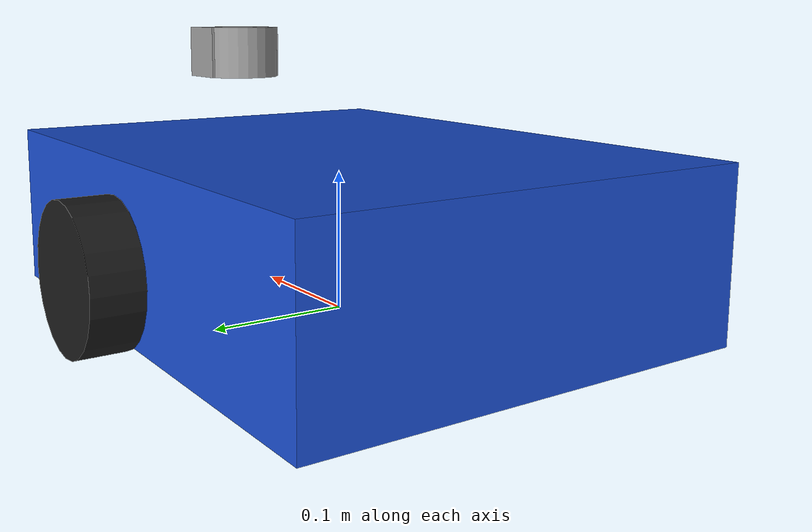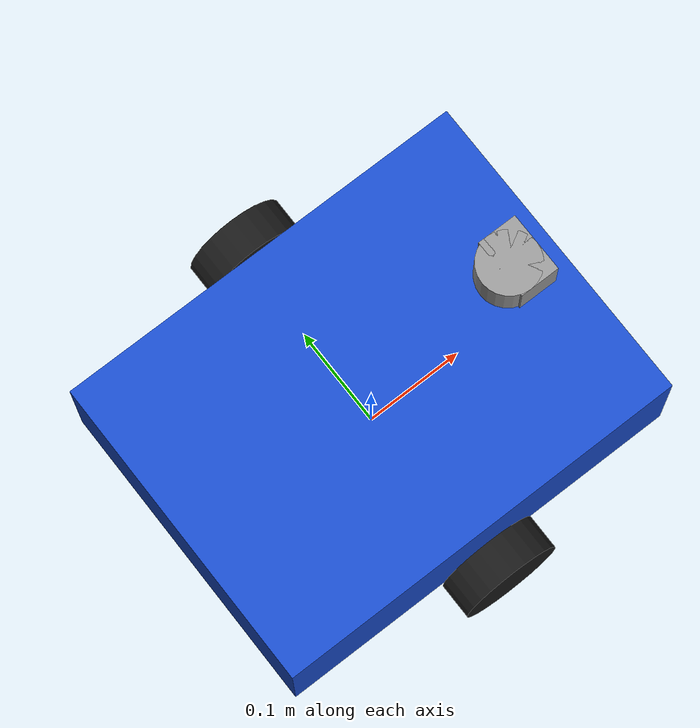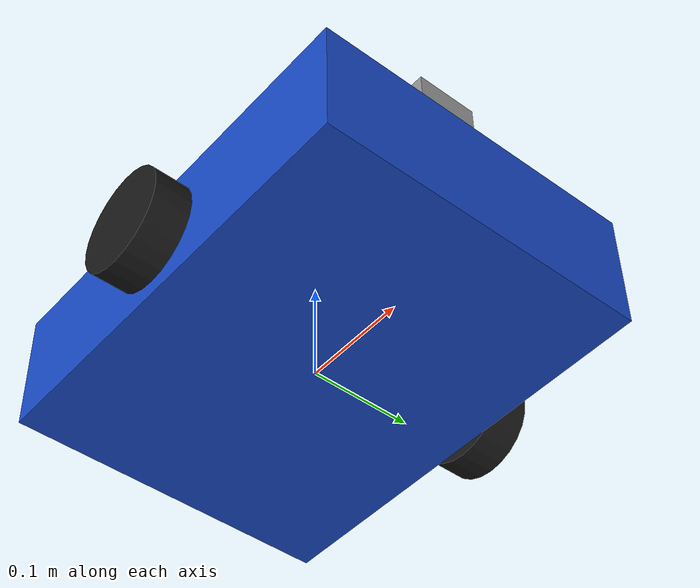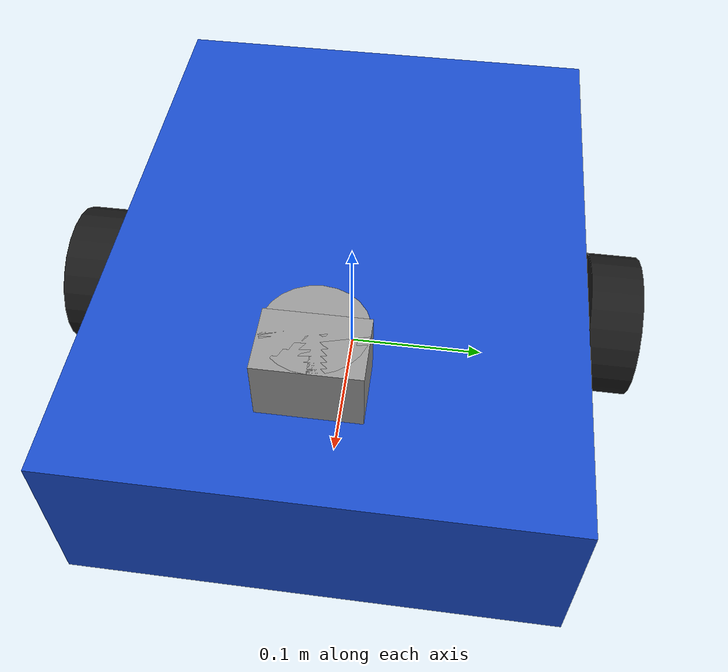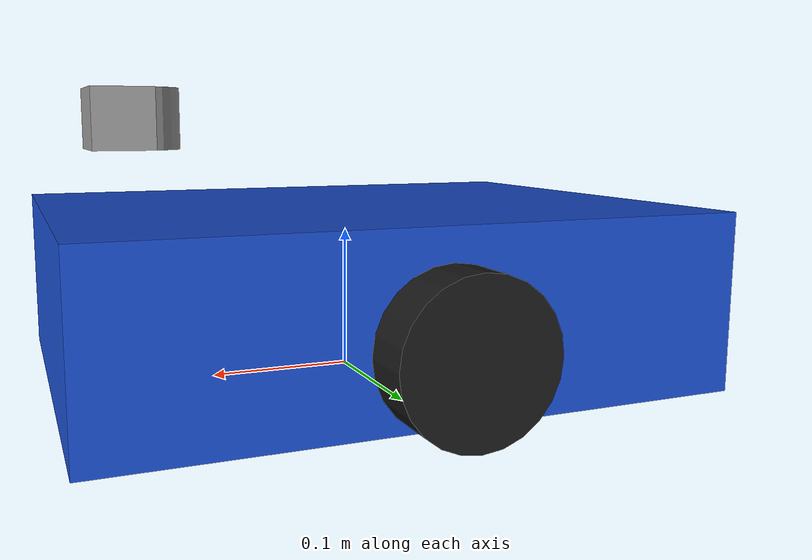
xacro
<?xml version="1.0"?>
<robot name="mobile_bot" xmlns:xacro="http://www.ros.org/wiki/xacro">

  <!-- ========= 参数 ========= -->
  <xacro:property name="base_length" value="0.42"/>
  <xacro:property name="base_width"  value="0.32"/>
  <xacro:property name="base_height" value="0.12"/>

  <xacro:property name="wheel_radius" value="0.05"/>
  <xacro:property name="wheel_width"  value="0.035"/>
  <xacro:property name="wheel_y"      value="0.185"/>
  <xacro:property name="wheel_z"      value="0.05"/>

  <xacro:property name="laser_x" value="0.15"/>
  <xacro:property name="laser_z" value="0.18"/>

  <xacro:property name="camera_x" value="0.16"/>
  <xacro:property name="camera_z" value="0.18"/>

  <!-- ========= 材质 ========= -->
  <material name="blue">
    <color rgba="0.1 0.3 0.8 1.0"/>
  </material>

  <material name="black">
    <color rgba="0.1 0.1 0.1 1.0"/>
  </material>

  <material name="gray">
    <color rgba="0.6 0.6 0.6 1.0"/>
  </material>

  <!-- ========= 底盘 ========= -->
  <link name="base_link">
    <visual>
      <origin xyz="0 0 ${base_height/2.0}" rpy="0 0 0"/>
      <geometry>
        <box size="${base_length} ${base_width} ${base_height}"/>
      </geometry>
      <material name="blue"/>
    </visual>

    <collision>
      <origin xyz="0 0 ${base_height/2.0}" rpy="0 0 0"/>
      <geometry>
        <box size="${base_length} ${base_width} ${base_height}"/>
      </geometry>
    </collision>

    <inertial>
      <origin xyz="0 0 ${base_height/2.0}" rpy="0 0 0"/>
      <mass value="8.0"/>
      <inertia ixx="0.10" ixy="0.0" ixz="0.0"
               iyy="0.15" iyz="0.0"
               izz="0.20"/>
    </inertial>
  </link>

  <!-- ========= 左轮 ========= -->
  <link name="left_wheel_link">
    <visual>
      <origin xyz="0 0 0" rpy="1.57079632679 0 0"/>
      <geometry>
        <cylinder radius="${wheel_radius}" length="${wheel_width}"/>
      </geometry>
      <material name="black"/>
    </visual>

    <collision>
      <origin xyz="0 0 0" rpy="1.57079632679 0 0"/>
      <geometry>
        <cylinder radius="${wheel_radius}" length="${wheel_width}"/>
      </geometry>
    </collision>

    <inertial>
      <mass value="0.5"/>
      <inertia ixx="0.001" ixy="0.0" ixz="0.0"
               iyy="0.001" iyz="0.0"
               izz="0.001"/>
    </inertial>
  </link>

  <joint name="left_wheel_joint" type="continuous">
    <parent link="base_link"/>
    <child link="left_wheel_link"/>
    <origin xyz="0 ${wheel_y} ${wheel_z}" rpy="0 0 0"/>
    <axis xyz="0 1 0"/>
  </joint>

  <!-- ========= 右轮 ========= -->
  <link name="right_wheel_link">
    <visual>
      <origin xyz="0 0 0" rpy="1.57079632679 0 0"/>
      <geometry>
        <cylinder radius="${wheel_radius}" length="${wheel_width}"/>
      </geometry>
      <material name="black"/>
    </visual>

    <collision>
      <origin xyz="0 0 0" rpy="1.57079632679 0 0"/>
      <geometry>
        <cylinder radius="${wheel_radius}" length="${wheel_width}"/>
      </geometry>
    </collision>

    <inertial>
      <mass value="0.5"/>
      <inertia ixx="0.001" ixy="0.0" ixz="0.0"
               iyy="0.001" iyz="0.0"
               izz="0.001"/>
    </inertial>
  </link>

  <joint name="right_wheel_joint" type="continuous">
    <parent link="base_link"/>
    <child link="right_wheel_link"/>
    <origin xyz="0 -${wheel_y} ${wheel_z}" rpy="0 0 0"/>
    <axis xyz="0 1 0"/>
  </joint>

  <!-- ========= 万向轮 / 支撑轮 ========= -->
  <link name="caster_link">
    <visual>
      <origin xyz="0 0 0" rpy="0 0 0"/>
      <geometry>
        <sphere radius="0.03"/>
      </geometry>
      <material name="gray"/>
    </visual>
  </link>

  <joint name="caster_joint" type="fixed">
    <parent link="base_link"/>
    <child link="caster_link"/>
    <origin xyz="-0.16 0 0.03" rpy="0 0 0"/>
  </joint>

  <!-- ========= 激光雷达 ========= -->
  <link name="laser_link">
    <visual>
      <origin xyz="0 0 0" rpy="0 0 0"/>
      <geometry>
        <cylinder radius="0.03" length="0.04"/>
      </geometry>
      <material name="gray"/>
    </visual>
  </link>

  <joint name="laser_joint" type="fixed">
    <parent link="base_link"/>
    <child link="laser_link"/>
    <origin xyz="${laser_x} 0 ${laser_z}" rpy="0 0 0"/>
  </joint>

  <!-- ========= 相机 ========= -->
  <link name="camera_link">
    <visual>
      <origin xyz="0 0 0" rpy="0 0 0"/>
      <geometry>
        <box size="0.04 0.06 0.04"/>
      </geometry>
      <material name="gray"/>
    </visual>
  </link>

  <joint name="camera_joint" type="fixed">
    <parent link="base_link"/>
    <child link="camera_link"/>
    <origin xyz="${camera_x} 0 ${camera_z}" rpy="0 0 0"/>
  </joint>

</robot>
